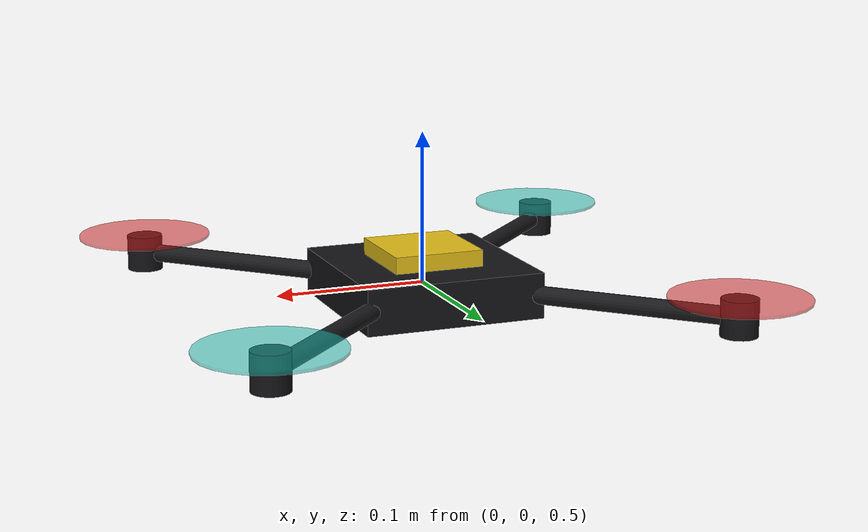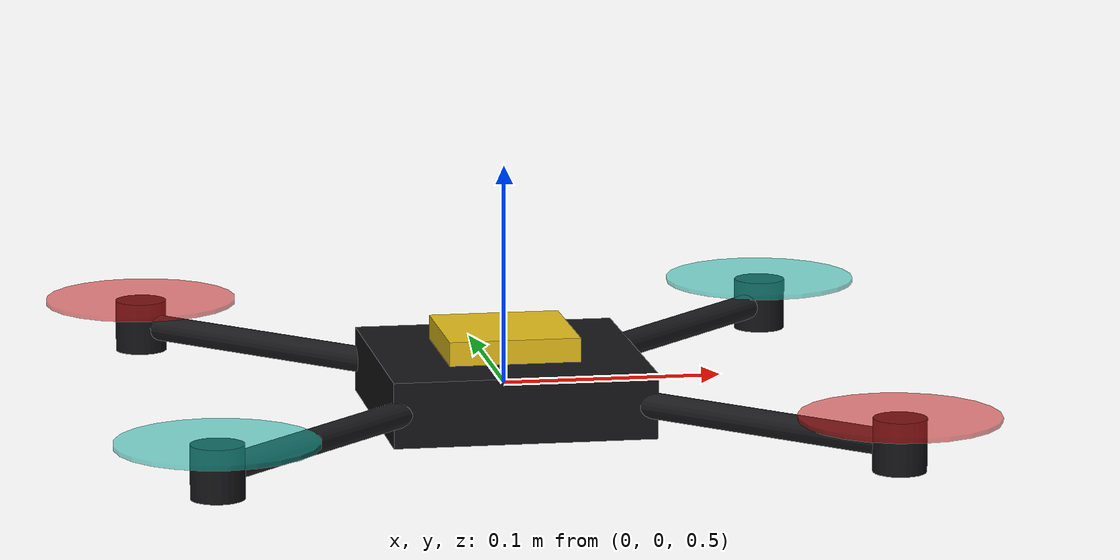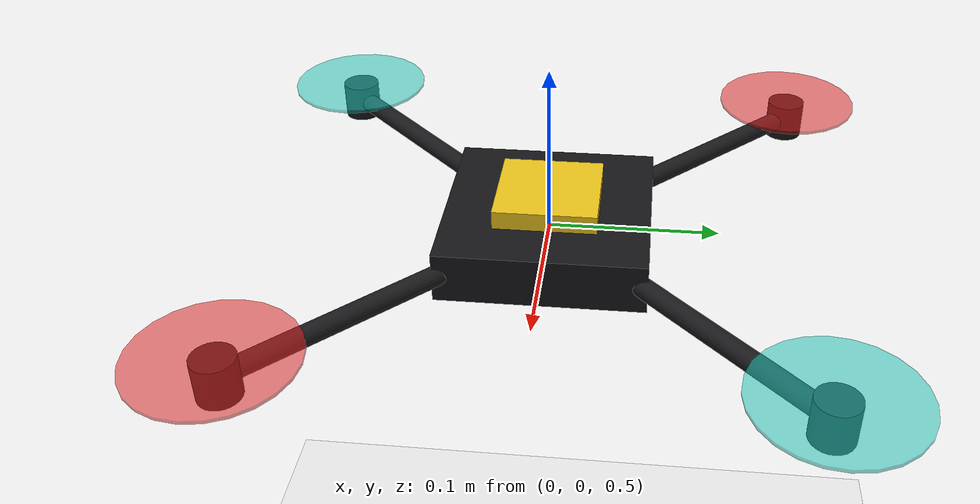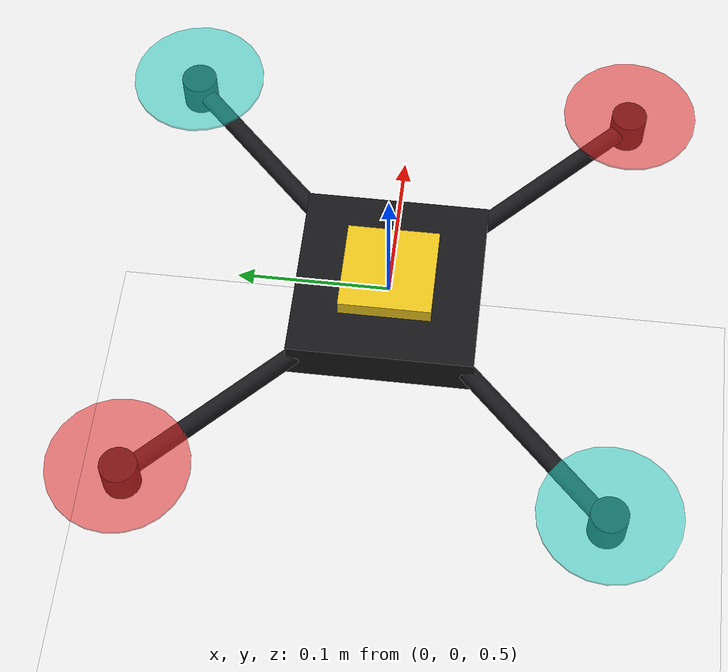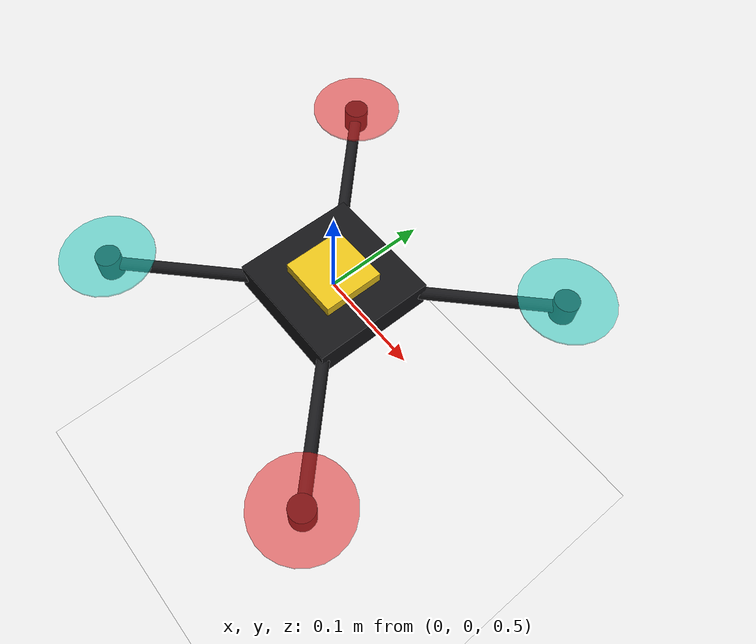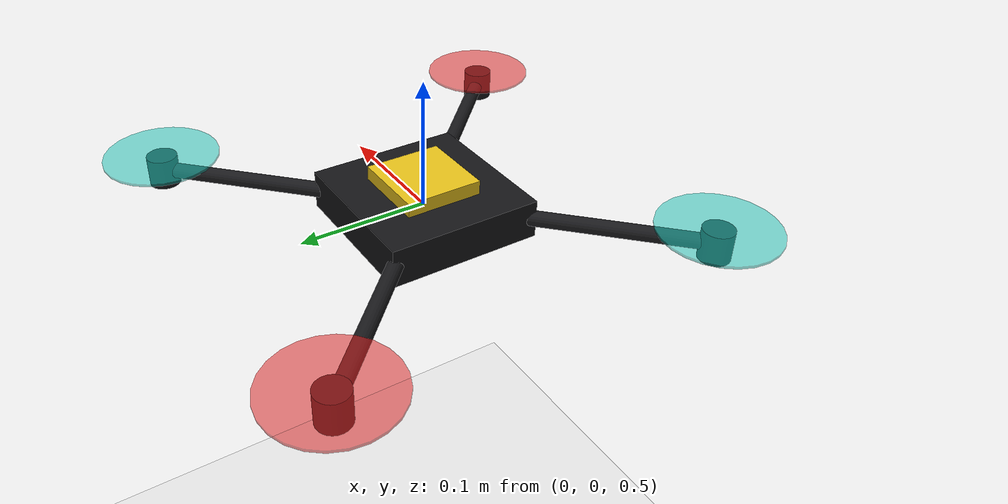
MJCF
<mujoco model="racing_quad">
  <option timestep="0.005" gravity="0 0 -9.81" integrator="RK4"/>

  <asset>
    <material name="frame_carbon" rgba="0.08 0.08 0.09 1" specular="0.6" shininess="0.4"/>
    <material name="arm_carbon" rgba="0.1 0.1 0.11 1" specular="0.5" shininess="0.3"/>
    <material name="prop_red" rgba="0.85 0.1 0.1 0.55" specular="0.3"/>
    <material name="prop_teal" rgba="0.1 0.75 0.7 0.55" specular="0.3"/>
    <material name="accent" rgba="0.9 0.75 0.1 1" specular="0.7" shininess="0.6"/>
  </asset>

  <worldbody>
    <light diffuse=".6 .6 .6" pos="0 0 3" dir="0 0 -1"/>
    <geom type="plane" size="5 5 0.1" rgba=".9 .9 .9 1"/>

    <body name="drone" pos="0 0 0.5">
      <freejoint name="root"/>
      <inertial pos="0 0 0" mass="0.5" diaginertia="0.0023 0.0023 0.004"/>

      <!-- central flight-controller stack, low profile, X-frame racing look -->
      <geom type="box" size="0.06 0.06 0.015" material="frame_carbon" mass="0"/>
      <geom type="box" size="0.03 0.03 0.008" pos="0 0 0.018" material="accent" mass="0"/>

      <!-- rotor reference sites, same positions/physics as original -->
      <site name="rotor_fr" pos=" 0.15 -0.15 0" size="0.02" rgba="1 0 0 0"/>
      <site name="rotor_fl" pos=" 0.15  0.15 0" size="0.02" rgba="0 1 0 0"/>
      <site name="rotor_bl" pos="-0.15  0.15 0" size="0.02" rgba="0 1 0 0"/>
      <site name="rotor_br" pos="-0.15 -0.15 0" size="0.02" rgba="1 0 0 0"/>

      <!-- slim carbon arms, X configuration -->
      <geom type="capsule" fromto="0 0 0  0.15 -0.15 0" size="0.006" material="arm_carbon" mass="0.02"/>
      <geom type="capsule" fromto="0 0 0  0.15  0.15 0" size="0.006" material="arm_carbon" mass="0.02"/>
      <geom type="capsule" fromto="0 0 0 -0.15  0.15 0" size="0.006" material="arm_carbon" mass="0.02"/>
      <geom type="capsule" fromto="0 0 0 -0.15 -0.15 0" size="0.006" material="arm_carbon" mass="0.02"/>

      <!-- motor bells at each arm tip -->
      <geom type="cylinder" pos=" 0.15 -0.15 0" size="0.012 0.012" material="frame_carbon" mass="0"/>
      <geom type="cylinder" pos=" 0.15  0.15 0" size="0.012 0.012" material="frame_carbon" mass="0"/>
      <geom type="cylinder" pos="-0.15  0.15 0" size="0.012 0.012" material="frame_carbon" mass="0"/>
      <geom type="cylinder" pos="-0.15 -0.15 0" size="0.012 0.012" material="frame_carbon" mass="0"/>

      <!-- visual prop discs (thin, semi-transparent, non-colliding) -->
      <geom type="cylinder" pos=" 0.15 -0.15 0.012" size="0.045 0.001" material="prop_red" contype="0" conaffinity="0" mass="0"/>
      <geom type="cylinder" pos=" 0.15  0.15 0.012" size="0.045 0.001" material="prop_teal" contype="0" conaffinity="0" mass="0"/>
      <geom type="cylinder" pos="-0.15  0.15 0.012" size="0.045 0.001" material="prop_red" contype="0" conaffinity="0" mass="0"/>
      <geom type="cylinder" pos="-0.15 -0.15 0.012" size="0.045 0.001" material="prop_teal" contype="0" conaffinity="0" mass="0"/>
    </body>
  </worldbody>

  <actuator>
    <motor site="rotor_fr" gear="0 0 1 0 0  0.02" ctrlrange="0 5" name="m_fr"/>
    <motor site="rotor_fl" gear="0 0 1 0 0 -0.02" ctrlrange="0 5" name="m_fl"/>
    <motor site="rotor_bl" gear="0 0 1 0 0  0.02" ctrlrange="0 5" name="m_bl"/>
    <motor site="rotor_br" gear="0 0 1 0 0 -0.02" ctrlrange="0 5" name="m_br"/>
  </actuator>
</mujoco>
